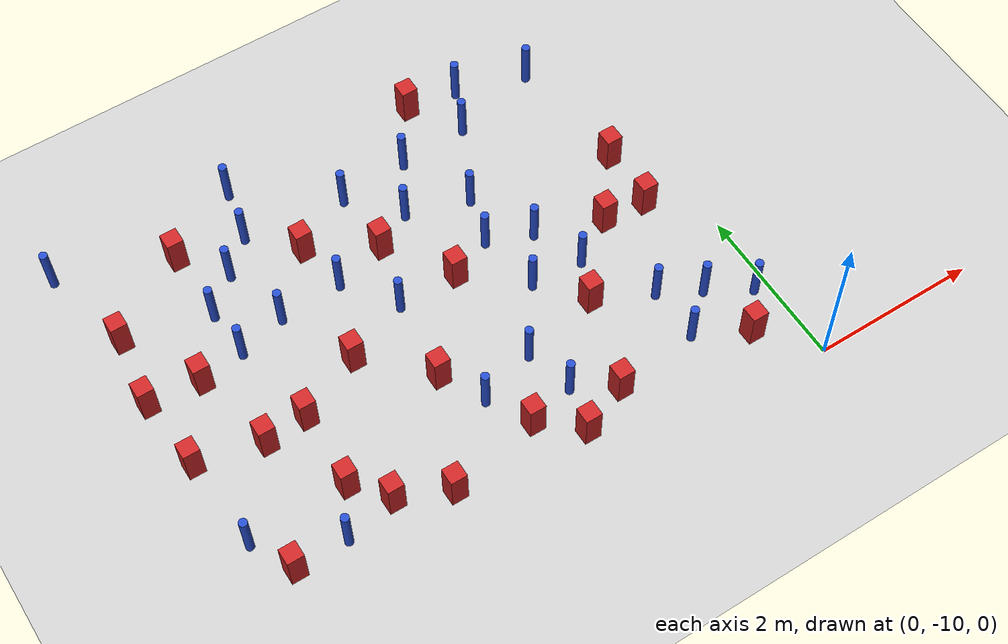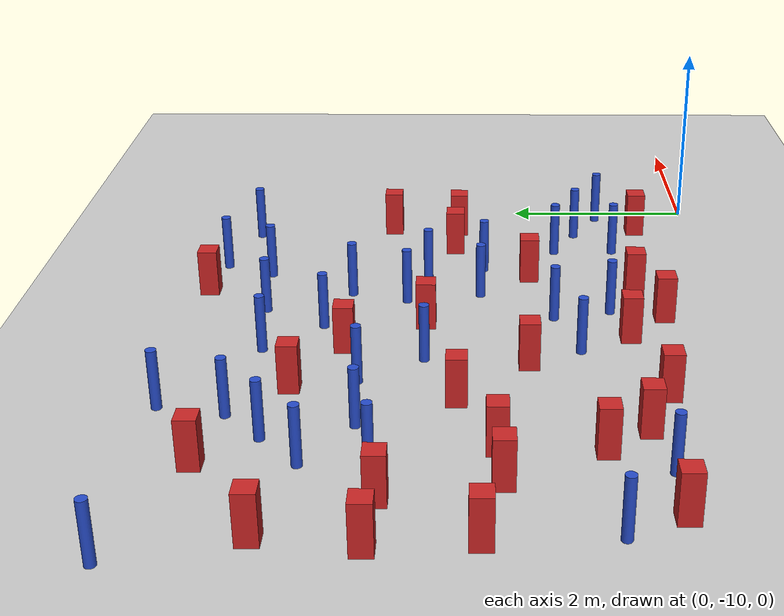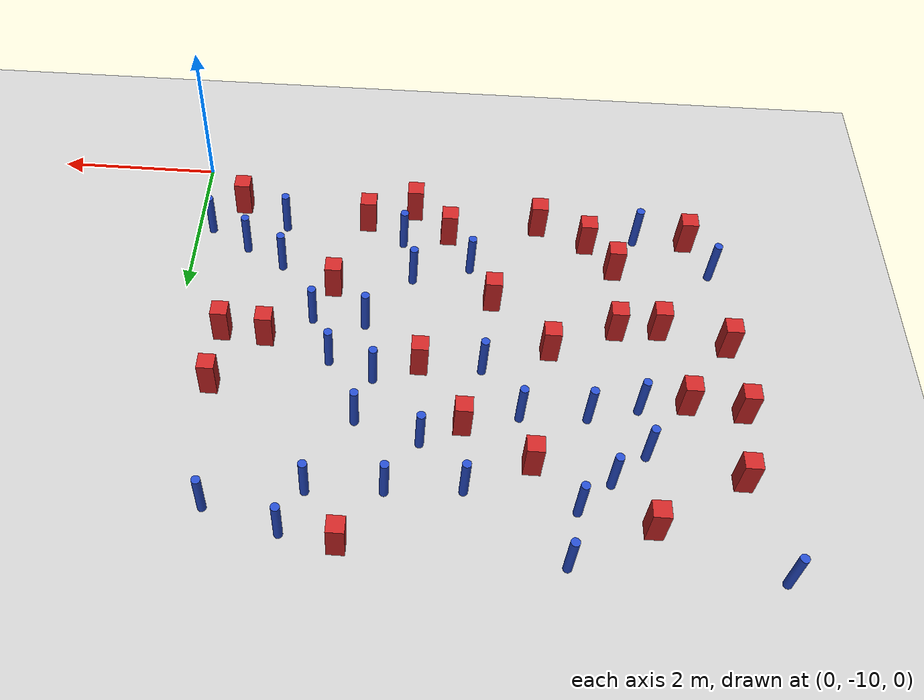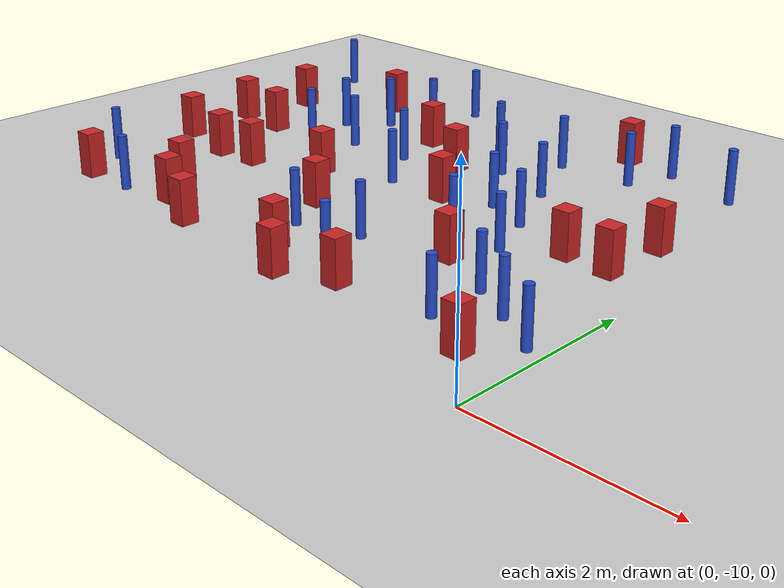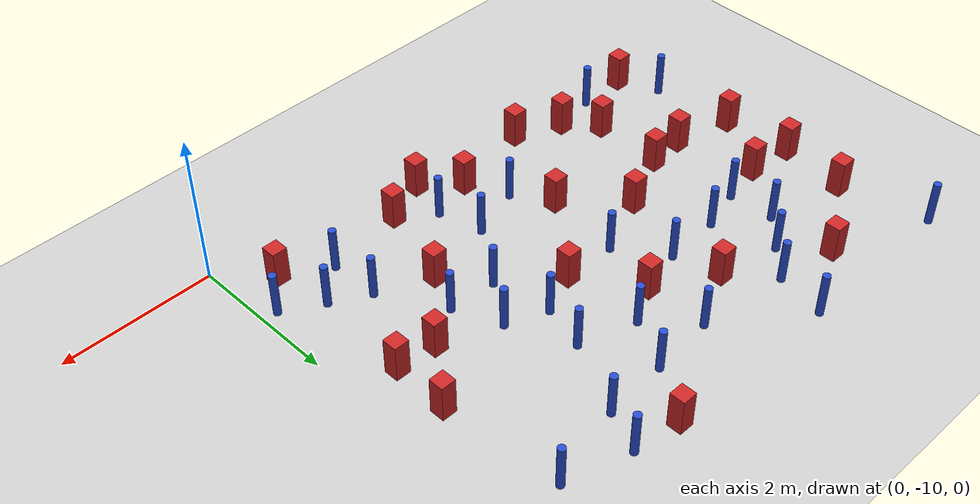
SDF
<sdf version="1.6">
 <world name="default">
  <model name="ground_plane">
   <static>1</static>
   <link name="link">
    <collision name="collision">
     <geometry><plane><normal>0 0 1</normal><size>100 100</size></plane></geometry>
     <surface><friction><ode><mu>100</mu><mu2>50</mu2></ode></friction></surface>
    </collision>
    <visual name="visual">
     <cast_shadows>0</cast_shadows>
     <geometry><plane><normal>0 0 1</normal><size>100 100</size></plane></geometry>
     <material>
      <ambient>1.0 1.0 1.0 1.0</ambient>
      <diffuse>0.8 0.8 0.8 1.0</diffuse>
      <specular>0.01 0.01 0.01 1.000000</specular>
     </material>
    </visual>
   </link>
  </model>
  <model name="square_post_obstacle1">
   <static>true</static>
   <pose>-6.49581654338 -5.72208467229 8.22691968438e-08 7.22125133819e-06 -7.54495500217e-07 2.29674213826e-05</pose>
   <link name="link">
    <pose>0 0 0.25 0 -0 0</pose>
    <inertial>
     <mass>100</mass>
     <inertia>
      <ixx>0.166667</ixx>
      <ixy>0</ixy>
      <ixz>0</ixz>
      <iyy>0.166667</iyy>
      <iyz>0</iyz>
      <izz>0.166667</izz>
     </inertia>
    </inertial>
    <collision name="collision"><geometry><box><size>.2 .2 .5</size></box></geometry></collision>
    <visual name="visual">
     <geometry><box><size>.2 .2 .5</size></box></geometry>
     <material>
      <script><name>Gazebo/Red</name><uri>file://media/materials/scripts/gazebo.material</uri></script>
     </material>
    </visual>
   </link>
  </model>
  <model name="pole_obstacle1">
   <static>true</static>
   <pose>-1.77444294185 -5.25899595476 2.88873142074e-08 -9.90536689852e-09 4.60219948989e-07 -1.2096599496e-07</pose>
   <link name="link">
    <pose>0 0 0.3 0 -0 0</pose>
    <inertial>
     <mass>1</mass>
     <inertia><ixx>0.145833</ixx><ixy>0</ixy><ixz>0</ixz><iyy>0.145833</iyy><iyz>0</iyz><izz>0.125</izz></inertia>
    </inertial>
    <collision name="collision">
     <geometry><cylinder><radius>0.05</radius><length>.6</length></cylinder></geometry>
    </collision>
    <visual name="visual">
     <geometry><cylinder><radius>0.05</radius><length>.6</length></cylinder></geometry>
     <material>
      <script><name>Gazebo/Blue</name><uri>file://media/materials/scripts/gazebo.material</uri></script>
     </material>
    </visual>
   </link>
  </model>
  <model name="square_post_obstacle4">
   <static>true</static>
   <pose>-0.535240153537 -6.54588953892 8.22691968438e-08 7.2212513382e-06 -7.54495500217e-07 2.29674213826e-05</pose>
   <link name="link">
    <pose>0 0 0.25 0 -0 0</pose>
    <inertial>
     <mass>100</mass>
     <inertia>
      <ixx>0.166667</ixx>
      <ixy>0</ixy>
      <ixz>0</ixz>
      <iyy>0.166667</iyy>
      <iyz>0</iyz>
      <izz>0.166667</izz>
     </inertia>
    </inertial>
    <collision name="collision"><geometry><box><size>.2 .2 .5</size></box></geometry></collision>
    <visual name="visual">
     <geometry><box><size>.2 .2 .5</size></box></geometry>
     <material>
      <script><name>Gazebo/Red</name><uri>file://media/materials/scripts/gazebo.material</uri></script>
     </material>
    </visual>
   </link>
  </model>
  <model name="square_post_obstacle5">
   <static>true</static>
   <pose>-5.23782894316 -7.6623888755 8.22691968438e-08 7.2212513382e-06 -7.54495500217e-07 2.29674213826e-05</pose>
   <link name="link">
    <pose>0 0 0.25 0 -0 0</pose>
    <inertial>
     <mass>100</mass>
     <inertia>
      <ixx>0.166667</ixx>
      <ixy>0</ixy>
      <ixz>0</ixz>
      <iyy>0.166667</iyy>
      <iyz>0</iyz>
      <izz>0.166667</izz>
     </inertia>
    </inertial>
    <collision name="collision"><geometry><box><size>.2 .2 .5</size></box></geometry></collision>
    <visual name="visual">
     <geometry><box><size>.2 .2 .5</size></box></geometry>
     <material>
      <script><name>Gazebo/Red</name><uri>file://media/materials/scripts/gazebo.material</uri></script>
     </material>
    </visual>
   </link>
  </model>
  <model name="square_post_obstacle7">
   <static>true</static>
   <pose>-5.48395240583 -5.07697319448 8.22691968438e-08 7.22125133819e-06 -7.54495500217e-07 2.29674213826e-05</pose>
   <link name="link">
    <pose>0 0 0.25 0 -0 0</pose>
    <inertial>
     <mass>100</mass>
     <inertia>
      <ixx>0.166667</ixx>
      <ixy>0</ixy>
      <ixz>0</ixz>
      <iyy>0.166667</iyy>
      <iyz>0</iyz>
      <izz>0.166667</izz>
     </inertia>
    </inertial>
    <collision name="collision"><geometry><box><size>.2 .2 .5</size></box></geometry></collision>
    <visual name="visual">
     <geometry><box><size>.2 .2 .5</size></box></geometry>
     <material>
      <script><name>Gazebo/Red</name><uri>file://media/materials/scripts/gazebo.material</uri></script>
     </material>
    </visual>
   </link>
  </model>
  <model name="square_post_obstacle15">
   <static>true</static>
   <pose>-5.27272113608 -8.60478890227 8.22691968438e-08 7.22125133819e-06 -7.54495500217e-07 2.29674213826e-05</pose>
   <link name="link">
    <pose>0 0 0.25 0 -0 0</pose>
    <inertial>
     <mass>100</mass>
     <inertia>
      <ixx>0.166667</ixx>
      <ixy>0</ixy>
      <ixz>0</ixz>
      <iyy>0.166667</iyy>
      <iyz>0</iyz>
      <izz>0.166667</izz>
     </inertia>
    </inertial>
    <collision name="collision"><geometry><box><size>.2 .2 .5</size></box></geometry></collision>
    <visual name="visual">
     <geometry><box><size>.2 .2 .5</size></box></geometry>
     <material>
      <script><name>Gazebo/Red</name><uri>file://media/materials/scripts/gazebo.material</uri></script>
     </material>
    </visual>
   </link>
  </model>
  <model name="pole_obstacle9">
   <static>true</static>
   <pose>-2.64808662355 -8.89009534541 2.88873142074e-08 -9.90536692318e-09 4.6021994893e-07 -1.20965994988e-07</pose>
   <link name="link">
    <pose>0 0 0.3 0 -0 0</pose>
    <inertial>
     <mass>1</mass>
     <inertia><ixx>0.145833</ixx><ixy>0</ixy><ixz>0</ixz><iyy>0.145833</iyy><iyz>0</iyz><izz>0.125</izz></inertia>
    </inertial>
    <collision name="collision">
     <geometry><cylinder><radius>0.05</radius><length>.6</length></cylinder></geometry>
    </collision>
    <visual name="visual">
     <geometry><cylinder><radius>0.05</radius><length>.6</length></cylinder></geometry>
     <material>
      <script><name>Gazebo/Blue</name><uri>file://media/materials/scripts/gazebo.material</uri></script>
     </material>
    </visual>
   </link>
  </model>
  <model name="square_post_obstacle27">
   <static>true</static>
   <pose>-2.92950062734 -6.98607490957 8.22691968438e-08 7.22125133819e-06 -7.54495500217e-07 2.29674213826e-05</pose>
   <link name="link">
    <pose>0 0 0.25 0 -0 0</pose>
    <inertial>
     <mass>100</mass>
     <inertia>
      <ixx>0.166667</ixx>
      <ixy>0</ixy>
      <ixz>0</ixz>
      <iyy>0.166667</iyy>
      <iyz>0</iyz>
      <izz>0.166667</izz>
     </inertia>
    </inertial>
    <collision name="collision"><geometry><box><size>.2 .2 .5</size></box></geometry></collision>
    <visual name="visual">
     <geometry><box><size>.2 .2 .5</size></box></geometry>
     <material>
      <script><name>Gazebo/Red</name><uri>file://media/materials/scripts/gazebo.material</uri></script>
     </material>
    </visual>
   </link>
  </model>
  <model name="pole_obstacle20">
   <static>true</static>
   <pose>-1.15723160822 -8.3994218162 2.88873142074e-08 -9.90536690474e-09 4.60219948974e-07 -1.2096599497e-07</pose>
   <link name="link">
    <pose>0 0 0.3 0 -0 0</pose>
    <inertial>
     <mass>1</mass>
     <inertia><ixx>0.145833</ixx><ixy>0</ixy><ixz>0</ixz><iyy>0.145833</iyy><iyz>0</iyz><izz>0.125</izz></inertia>
    </inertial>
    <collision name="collision">
     <geometry><cylinder><radius>0.05</radius><length>.6</length></cylinder></geometry>
    </collision>
    <visual name="visual">
     <geometry><cylinder><radius>0.05</radius><length>.6</length></cylinder></geometry>
     <material>
      <script><name>Gazebo/Blue</name><uri>file://media/materials/scripts/gazebo.material</uri></script>
     </material>
    </visual>
   </link>
  </model>
  <model name="pole_obstacle25">
   <static>true</static>
   <pose>-4.70092026937 -5.23075057599 2.88873142074e-08 -9.90536690842e-09 4.60219948965e-07 -1.20965994976e-07</pose>
   <link name="link">
    <pose>0 0 0.3 0 -0 0</pose>
    <inertial>
     <mass>1</mass>
     <inertia><ixx>0.145833</ixx><ixy>0</ixy><ixz>0</ixz><iyy>0.145833</iyy><iyz>0</iyz><izz>0.125</izz></inertia>
    </inertial>
    <collision name="collision">
     <geometry><cylinder><radius>0.05</radius><length>.6</length></cylinder></geometry>
    </collision>
    <visual name="visual">
     <geometry><cylinder><radius>0.05</radius><length>.6</length></cylinder></geometry>
     <material>
      <script><name>Gazebo/Blue</name><uri>file://media/materials/scripts/gazebo.material</uri></script>
     </material>
    </visual>
   </link>
  </model>
  <model name="pole_obstacle26">
   <static>true</static>
   <pose>-2.62782007153 -5.31586967501 2.88873142074e-08 -9.90536689859e-09 4.60219948989e-07 -1.20965994961e-07</pose>
   <link name="link">
    <pose>0 0 0.3 0 -0 0</pose>
    <inertial>
     <mass>1</mass>
     <inertia><ixx>0.145833</ixx><ixy>0</ixy><ixz>0</ixz><iyy>0.145833</iyy><iyz>0</iyz><izz>0.125</izz></inertia>
    </inertial>
    <collision name="collision">
     <geometry><cylinder><radius>0.05</radius><length>.6</length></cylinder></geometry>
    </collision>
    <visual name="visual">
     <geometry><cylinder><radius>0.05</radius><length>.6</length></cylinder></geometry>
     <material>
      <script><name>Gazebo/Blue</name><uri>file://media/materials/scripts/gazebo.material</uri></script>
     </material>
    </visual>
   </link>
  </model>
  <model name="pole_obstacle37">
   <static>true</static>
   <pose>-5.4778821513 -5.96932572095 2.88873142074e-08 -9.90536690842e-09 4.60219948965e-07 -1.20965994976e-07</pose>
   <link name="link">
    <pose>0 0 0.3 0 -0 0</pose>
    <inertial>
     <mass>1</mass>
     <inertia><ixx>0.145833</ixx><ixy>0</ixy><ixz>0</ixz><iyy>0.145833</iyy><iyz>0</iyz><izz>0.125</izz></inertia>
    </inertial>
    <collision name="collision">
     <geometry><cylinder><radius>0.05</radius><length>.6</length></cylinder></geometry>
    </collision>
    <visual name="visual">
     <geometry><cylinder><radius>0.05</radius><length>.6</length></cylinder></geometry>
     <material>
      <script><name>Gazebo/Blue</name><uri>file://media/materials/scripts/gazebo.material</uri></script>
     </material>
    </visual>
   </link>
  </model>
  <model name="square_post_obstacle42">
   <static>true</static>
   <pose>-4.4484687939 -7.30685529738 8.22691968438e-08 7.2212513382e-06 -7.54495500217e-07 2.29674213826e-05</pose>
   <link name="link">
    <pose>0 0 0.25 0 -0 0</pose>
    <inertial>
     <mass>100</mass>
     <inertia>
      <ixx>0.166667</ixx>
      <ixy>0</ixy>
      <ixz>0</ixz>
      <iyy>0.166667</iyy>
      <iyz>0</iyz>
      <izz>0.166667</izz>
     </inertia>
    </inertial>
    <collision name="collision"><geometry><box><size>.2 .2 .5</size></box></geometry></collision>
    <visual name="visual">
     <geometry><box><size>.2 .2 .5</size></box></geometry>
     <material>
      <script><name>Gazebo/Red</name><uri>file://media/materials/scripts/gazebo.material</uri></script>
     </material>
    </visual>
   </link>
  </model>
  <model name="pole_obstacle47">
   <static>true</static>
   <pose>-2.25893494563 -7.54692116782 2.88873142074e-08 -9.90536689859e-09 4.60219948989e-07 -1.20965994961e-07</pose>
   <link name="link">
    <pose>0 0 0.3 0 -0 0</pose>
    <inertial>
     <mass>1</mass>
     <inertia><ixx>0.145833</ixx><ixy>0</ixy><ixz>0</ixz><iyy>0.145833</iyy><iyz>0</iyz><izz>0.125</izz></inertia>
    </inertial>
    <collision name="collision">
     <geometry><cylinder><radius>0.05</radius><length>.6</length></cylinder></geometry>
    </collision>
    <visual name="visual">
     <geometry><cylinder><radius>0.05</radius><length>.6</length></cylinder></geometry>
     <material>
      <script><name>Gazebo/Blue</name><uri>file://media/materials/scripts/gazebo.material</uri></script>
     </material>
    </visual>
   </link>
  </model>
  <model name="square_post_obstacle54">
   <static>true</static>
   <pose>-3.21653124557 -9.03591766853 8.22691968438e-08 7.22125133819e-06 -7.54495500217e-07 2.29674213826e-05</pose>
   <link name="link">
    <pose>0 0 0.25 0 -0 0</pose>
    <inertial>
     <mass>100</mass>
     <inertia>
      <ixx>0.166667</ixx>
      <ixy>0</ixy>
      <ixz>0</ixz>
      <iyy>0.166667</iyy>
      <iyz>0</iyz>
      <izz>0.166667</izz>
     </inertia>
    </inertial>
    <collision name="collision"><geometry><box><size>.2 .2 .5</size></box></geometry></collision>
    <visual name="visual">
     <geometry><box><size>.2 .2 .5</size></box></geometry>
     <material>
      <script><name>Gazebo/Red</name><uri>file://media/materials/scripts/gazebo.material</uri></script>
     </material>
    </visual>
   </link>
  </model>
  <model name="square_post_obstacle69">
   <static>true</static>
   <pose>-6.61277963829 -6.60473546543 8.22691968438e-08 7.2212513382e-06 -7.54495500217e-07 2.29674213826e-05</pose>
   <link name="link">
    <pose>0 0 0.25 0 -0 0</pose>
    <inertial>
     <mass>100</mass>
     <inertia>
      <ixx>0.166667</ixx>
      <ixy>0</ixy>
      <ixz>0</ixz>
      <iyy>0.166667</iyy>
      <iyz>0</iyz>
      <izz>0.166667</izz>
     </inertia>
    </inertial>
    <collision name="collision"><geometry><box><size>.2 .2 .5</size></box></geometry></collision>
    <visual name="visual">
     <geometry><box><size>.2 .2 .5</size></box></geometry>
     <material>
      <script><name>Gazebo/Red</name><uri>file://media/materials/scripts/gazebo.material</uri></script>
     </material>
    </visual>
   </link>
  </model>
  <model name="square_post_obstacle72">
   <static>true</static>
   <pose>-4.94612372388 -9.01210995089 8.22691968438e-08 7.2212513382e-06 -7.54495500217e-07 2.29674213826e-05</pose>
   <link name="link">
    <pose>0 0 0.25 0 -0 0</pose>
    <inertial>
     <mass>100</mass>
     <inertia>
      <ixx>0.166667</ixx>
      <ixy>0</ixy>
      <ixz>0</ixz>
      <iyy>0.166667</iyy>
      <iyz>0</iyz>
      <izz>0.166667</izz>
     </inertia>
    </inertial>
    <collision name="collision"><geometry><box><size>.2 .2 .5</size></box></geometry></collision>
    <visual name="visual">
     <geometry><box><size>.2 .2 .5</size></box></geometry>
     <material>
      <script><name>Gazebo/Red</name><uri>file://media/materials/scripts/gazebo.material</uri></script>
     </material>
    </visual>
   </link>
  </model>
  <model name="pole_obstacle77">
   <static>true</static>
   <pose>-3.48215298455 -5.38869182189 2.88873142074e-08 -9.90536692062e-09 4.60219948937e-07 -1.20965994985e-07</pose>
   <link name="link">
    <pose>0 0 0.3 0 -0 0</pose>
    <inertial>
     <mass>1</mass>
     <inertia><ixx>0.145833</ixx><ixy>0</ixy><ixz>0</ixz><iyy>0.145833</iyy><iyz>0</iyz><izz>0.125</izz></inertia>
    </inertial>
    <collision name="collision">
     <geometry><cylinder><radius>0.05</radius><length>.6</length></cylinder></geometry>
    </collision>
    <visual name="visual">
     <geometry><cylinder><radius>0.05</radius><length>.6</length></cylinder></geometry>
     <material>
      <script><name>Gazebo/Blue</name><uri>file://media/materials/scripts/gazebo.material</uri></script>
     </material>
    </visual>
   </link>
  </model>
  <model name="pole_obstacle78">
   <static>true</static>
   <pose>-1.62302462864 -7.59000392586 2.88873142074e-08 -9.90536689852e-09 4.60219948989e-07 -1.2096599496e-07</pose>
   <link name="link">
    <pose>0 0 0.3 0 -0 0</pose>
    <inertial>
     <mass>1</mass>
     <inertia><ixx>0.145833</ixx><ixy>0</ixy><ixz>0</ixz><iyy>0.145833</iyy><iyz>0</iyz><izz>0.125</izz></inertia>
    </inertial>
    <collision name="collision">
     <geometry><cylinder><radius>0.05</radius><length>.6</length></cylinder></geometry>
    </collision>
    <visual name="visual">
     <geometry><cylinder><radius>0.05</radius><length>.6</length></cylinder></geometry>
     <material>
      <script><name>Gazebo/Blue</name><uri>file://media/materials/scripts/gazebo.material</uri></script>
     </material>
    </visual>
   </link>
  </model>
  <model name="pole_obstacle80">
   <static>true</static>
   <pose>-3.49709025346 -8.5238423531 2.88873142074e-08 -9.90536692318e-09 4.6021994893e-07 -1.20965994988e-07</pose>
   <link name="link">
    <pose>0 0 0.3 0 -0 0</pose>
    <inertial>
     <mass>1</mass>
     <inertia><ixx>0.145833</ixx><ixy>0</ixy><ixz>0</ixz><iyy>0.145833</iyy><iyz>0</iyz><izz>0.125</izz></inertia>
    </inertial>
    <collision name="collision">
     <geometry><cylinder><radius>0.05</radius><length>.6</length></cylinder></geometry>
    </collision>
    <visual name="visual">
     <geometry><cylinder><radius>0.05</radius><length>.6</length></cylinder></geometry>
     <material>
      <script><name>Gazebo/Blue</name><uri>file://media/materials/scripts/gazebo.material</uri></script>
     </material>
    </visual>
   </link>
  </model>
  <model name="square_post_obstacle83">
   <static>true</static>
   <pose>-5.98142755582 -6.66524593034 8.22691968438e-08 7.22125133819e-06 -7.54495500217e-07 2.29674213826e-05</pose>
   <link name="link">
    <pose>0 0 0.25 0 -0 0</pose>
    <inertial>
     <mass>100</mass>
     <inertia>
      <ixx>0.166667</ixx>
      <ixy>0</ixy>
      <ixz>0</ixz>
      <iyy>0.166667</iyy>
      <iyz>0</iyz>
      <izz>0.166667</izz>
     </inertia>
    </inertial>
    <collision name="collision"><geometry><box><size>.2 .2 .5</size></box></geometry></collision>
    <visual name="visual">
     <geometry><box><size>.2 .2 .5</size></box></geometry>
     <material>
      <script><name>Gazebo/Red</name><uri>file://media/materials/scripts/gazebo.material</uri></script>
     </material>
    </visual>
   </link>
  </model>
  <model name="pole_obstacle102">
   <static>true</static>
   <pose>-3.66283865243 -6.9889638224 2.88873142074e-08 -9.90536689859e-09 4.60219948989e-07 -1.20965994961e-07</pose>
   <link name="link">
    <pose>0 0 0.3 0 -0 0</pose>
    <inertial>
     <mass>1</mass>
     <inertia><ixx>0.145833</ixx><ixy>0</ixy><ixz>0</ixz><iyy>0.145833</iyy><iyz>0</iyz><izz>0.125</izz></inertia>
    </inertial>
    <collision name="collision">
     <geometry><cylinder><radius>0.05</radius><length>.6</length></cylinder></geometry>
    </collision>
    <visual name="visual">
     <geometry><cylinder><radius>0.05</radius><length>.6</length></cylinder></geometry>
     <material>
      <script><name>Gazebo/Blue</name><uri>file://media/materials/scripts/gazebo.material</uri></script>
     </material>
    </visual>
   </link>
  </model>
  <model name="pole_obstacle106">
   <static>true</static>
   <pose>-2.79402318946 -8.29887619754 2.88873142074e-08 -9.90536692318e-09 4.6021994893e-07 -1.20965994988e-07</pose>
   <link name="link">
    <pose>0 0 0.3 0 -0 0</pose>
    <inertial>
     <mass>1</mass>
     <inertia><ixx>0.145833</ixx><ixy>0</ixy><ixz>0</ixz><iyy>0.145833</iyy><iyz>0</iyz><izz>0.125</izz></inertia>
    </inertial>
    <collision name="collision">
     <geometry><cylinder><radius>0.05</radius><length>.6</length></cylinder></geometry>
    </collision>
    <visual name="visual">
     <geometry><cylinder><radius>0.05</radius><length>.6</length></cylinder></geometry>
     <material>
      <script><name>Gazebo/Blue</name><uri>file://media/materials/scripts/gazebo.material</uri></script>
     </material>
    </visual>
   </link>
  </model>
  <model name="pole_obstacle114">
   <static>true</static>
   <pose>-2.23757025303 -6.18455468246 2.88873142074e-08 -9.90536689859e-09 4.60219948989e-07 -1.20965994961e-07</pose>
   <link name="link">
    <pose>0 0 0.3 0 -0 0</pose>
    <inertial>
     <mass>1</mass>
     <inertia><ixx>0.145833</ixx><ixy>0</ixy><ixz>0</ixz><iyy>0.145833</iyy><iyz>0</iyz><izz>0.125</izz></inertia>
    </inertial>
    <collision name="collision">
     <geometry><cylinder><radius>0.05</radius><length>.6</length></cylinder></geometry>
    </collision>
    <visual name="visual">
     <geometry><cylinder><radius>0.05</radius><length>.6</length></cylinder></geometry>
     <material>
      <script><name>Gazebo/Blue</name><uri>file://media/materials/scripts/gazebo.material</uri></script>
     </material>
    </visual>
   </link>
  </model>
  <model name="square_post_obstacle106">
   <static>true</static>
   <pose>-3.77031063508 -7.9996013728 8.22691968438e-08 7.2212513382e-06 -7.54495500217e-07 2.29674213826e-05</pose>
   <link name="link">
    <pose>0 0 0.25 0 -0 0</pose>
    <inertial>
     <mass>100</mass>
     <inertia>
      <ixx>0.166667</ixx>
      <ixy>0</ixy>
      <ixz>0</ixz>
      <iyy>0.166667</iyy>
      <iyz>0</iyz>
      <izz>0.166667</izz>
     </inertia>
    </inertial>
    <collision name="collision"><geometry><box><size>.2 .2 .5</size></box></geometry></collision>
    <visual name="visual">
     <geometry><box><size>.2 .2 .5</size></box></geometry>
     <material>
      <script><name>Gazebo/Red</name><uri>file://media/materials/scripts/gazebo.material</uri></script>
     </material>
    </visual>
   </link>
  </model>
  <model name="square_post_obstacle107">
   <static>true</static>
   <pose>-2.17443051852 -4.64879258032 8.22691968438e-08 7.2212513382e-06 -7.54495500217e-07 2.29674213826e-05</pose>
   <link name="link">
    <pose>0 0 0.25 0 -0 0</pose>
    <inertial>
     <mass>100</mass>
     <inertia>
      <ixx>0.166667</ixx>
      <ixy>0</ixy>
      <ixz>0</ixz>
      <iyy>0.166667</iyy>
      <iyz>0</iyz>
      <izz>0.166667</izz>
     </inertia>
    </inertial>
    <collision name="collision"><geometry><box><size>.2 .2 .5</size></box></geometry></collision>
    <visual name="visual">
     <geometry><box><size>.2 .2 .5</size></box></geometry>
     <material>
      <script><name>Gazebo/Red</name><uri>file://media/materials/scripts/gazebo.material</uri></script>
     </material>
    </visual>
   </link>
  </model>
  <model name="square_post_obstacle111">
   <static>true</static>
   <pose>-0.564410145143 -7.3117755938 8.22691968438e-08 7.2212513382e-06 -7.54495500217e-07 2.29674213826e-05</pose>
   <link name="link">
    <pose>0 0 0.25 0 -0 0</pose>
    <inertial>
     <mass>100</mass>
     <inertia>
      <ixx>0.166667</ixx>
      <ixy>0</ixy>
      <ixz>0</ixz>
      <iyy>0.166667</iyy>
      <iyz>0</iyz>
      <izz>0.166667</izz>
     </inertia>
    </inertial>
    <collision name="collision"><geometry><box><size>.2 .2 .5</size></box></geometry></collision>
    <visual name="visual">
     <geometry><box><size>.2 .2 .5</size></box></geometry>
     <material>
      <script><name>Gazebo/Red</name><uri>file://media/materials/scripts/gazebo.material</uri></script>
     </material>
    </visual>
   </link>
  </model>
  <model name="pole_obstacle134">
   <static>true</static>
   <pose>-2.40317543687 -6.77204001491 2.88873142074e-08 -9.90536689859e-09 4.60219948989e-07 -1.20965994961e-07</pose>
   <link name="link">
    <pose>0 0 0.3 0 -0 0</pose>
    <inertial>
     <mass>1</mass>
     <inertia><ixx>0.145833</ixx><ixy>0</ixy><ixz>0</ixz><iyy>0.145833</iyy><iyz>0</iyz><izz>0.125</izz></inertia>
    </inertial>
    <collision name="collision">
     <geometry><cylinder><radius>0.05</radius><length>.6</length></cylinder></geometry>
    </collision>
    <visual name="visual">
     <geometry><cylinder><radius>0.05</radius><length>.6</length></cylinder></geometry>
     <material>
      <script><name>Gazebo/Blue</name><uri>file://media/materials/scripts/gazebo.material</uri></script>
     </material>
    </visual>
   </link>
  </model>
  <model name="pole_obstacle136">
   <static>true</static>
   <pose>-0.682146431799 -8.65762190198 2.88873142074e-08 -9.90536690779e-09 4.60219948967e-07 -1.20965994975e-07</pose>
   <link name="link">
    <pose>0 0 0.3 0 -0 0</pose>
    <inertial>
     <mass>1</mass>
     <inertia><ixx>0.145833</ixx><ixy>0</ixy><ixz>0</ixz><iyy>0.145833</iyy><iyz>0</iyz><izz>0.125</izz></inertia>
    </inertial>
    <collision name="collision">
     <geometry><cylinder><radius>0.05</radius><length>.6</length></cylinder></geometry>
    </collision>
    <visual name="visual">
     <geometry><cylinder><radius>0.05</radius><length>.6</length></cylinder></geometry>
     <material>
      <script><name>Gazebo/Blue</name><uri>file://media/materials/scripts/gazebo.material</uri></script>
     </material>
    </visual>
   </link>
  </model>
  <model name="square_post_obstacle119">
   <static>true</static>
   <pose>-0.54333148861 -9.38399003667 8.22691968438e-08 7.22125133819e-06 -7.54495500217e-07 2.29674213826e-05</pose>
   <link name="link">
    <pose>0 0 0.25 0 -0 0</pose>
    <inertial>
     <mass>100</mass>
     <inertia>
      <ixx>0.166667</ixx>
      <ixy>0</ixy>
      <ixz>0</ixz>
      <iyy>0.166667</iyy>
      <iyz>0</iyz>
      <izz>0.166667</izz>
     </inertia>
    </inertial>
    <collision name="collision"><geometry><box><size>.2 .2 .5</size></box></geometry></collision>
    <visual name="visual">
     <geometry><box><size>.2 .2 .5</size></box></geometry>
     <material>
      <script><name>Gazebo/Red</name><uri>file://media/materials/scripts/gazebo.material</uri></script>
     </material>
    </visual>
   </link>
  </model>
  <model name="square_post_obstacle122">
   <static>true</static>
   <pose>-6.19625699769 -9.14391084021 8.22691968438e-08 7.22125133819e-06 -7.54495500217e-07 2.29674213826e-05</pose>
   <link name="link">
    <pose>0 0 0.25 0 -0 0</pose>
    <inertial>
     <mass>100</mass>
     <inertia>
      <ixx>0.166667</ixx>
      <ixy>0</ixy>
      <ixz>0</ixz>
      <iyy>0.166667</iyy>
      <iyz>0</iyz>
      <izz>0.166667</izz>
     </inertia>
    </inertial>
    <collision name="collision"><geometry><box><size>.2 .2 .5</size></box></geometry></collision>
    <visual name="visual">
     <geometry><box><size>.2 .2 .5</size></box></geometry>
     <material>
      <script><name>Gazebo/Red</name><uri>file://media/materials/scripts/gazebo.material</uri></script>
     </material>
    </visual>
   </link>
  </model>
  <model name="square_post_obstacle124">
   <static>true</static>
   <pose>-4.2175598201 -5.75183578168 8.22691968438e-08 7.22125133819e-06 -7.54495500217e-07 2.29674213826e-05</pose>
   <link name="link">
    <pose>0 0 0.25 0 -0 0</pose>
    <inertial>
     <mass>100</mass>
     <inertia>
      <ixx>0.166667</ixx>
      <ixy>0</ixy>
      <ixz>0</ixz>
      <iyy>0.166667</iyy>
      <iyz>0</iyz>
      <izz>0.166667</izz>
     </inertia>
    </inertial>
    <collision name="collision"><geometry><box><size>.2 .2 .5</size></box></geometry></collision>
    <visual name="visual">
     <geometry><box><size>.2 .2 .5</size></box></geometry>
     <material>
      <script><name>Gazebo/Red</name><uri>file://media/materials/scripts/gazebo.material</uri></script>
     </material>
    </visual>
   </link>
  </model>
  <model name="square_post_obstacle129">
   <static>true</static>
   <pose>-5.74767473606 -7.70438703255 8.22691968438e-08 7.2212513382e-06 -7.54495500217e-07 2.29674213826e-05</pose>
   <link name="link">
    <pose>0 0 0.25 0 -0 0</pose>
    <inertial>
     <mass>100</mass>
     <inertia>
      <ixx>0.166667</ixx>
      <ixy>0</ixy>
      <ixz>0</ixz>
      <iyy>0.166667</iyy>
      <iyz>0</iyz>
      <izz>0.166667</izz>
     </inertia>
    </inertial>
    <collision name="collision"><geometry><box><size>.2 .2 .5</size></box></geometry></collision>
    <visual name="visual">
     <geometry><box><size>.2 .2 .5</size></box></geometry>
     <material>
      <script><name>Gazebo/Red</name><uri>file://media/materials/scripts/gazebo.material</uri></script>
     </material>
    </visual>
   </link>
  </model>
  <model name="pole_obstacle143">
   <static>true</static>
   <pose>-4.09270612147 -6.37151546168 2.88873142074e-08 -9.90536690842e-09 4.60219948965e-07 -1.20965994976e-07</pose>
   <link name="link">
    <pose>0 0 0.3 0 -0 0</pose>
    <inertial>
     <mass>1</mass>
     <inertia><ixx>0.145833</ixx><ixy>0</ixy><ixz>0</ixz><iyy>0.145833</iyy><iyz>0</iyz><izz>0.125</izz></inertia>
    </inertial>
    <collision name="collision">
     <geometry><cylinder><radius>0.05</radius><length>.6</length></cylinder></geometry>
    </collision>
    <visual name="visual">
     <geometry><cylinder><radius>0.05</radius><length>.6</length></cylinder></geometry>
     <material>
      <script><name>Gazebo/Blue</name><uri>file://media/materials/scripts/gazebo.material</uri></script>
     </material>
    </visual>
   </link>
  </model>
  <model name="pole_obstacle145">
   <static>true</static>
   <pose>-6.46090372079 -8.63622571705 2.88873142074e-08 -9.9053668967e-09 4.60219948993e-07 -1.20965994957e-07</pose>
   <link name="link">
    <pose>0 0 0.3 0 -0 0</pose>
    <inertial>
     <mass>1</mass>
     <inertia><ixx>0.145833</ixx><ixy>0</ixy><ixz>0</ixz><iyy>0.145833</iyy><iyz>0</iyz><izz>0.125</izz></inertia>
    </inertial>
    <collision name="collision">
     <geometry><cylinder><radius>0.05</radius><length>.6</length></cylinder></geometry>
    </collision>
    <visual name="visual">
     <geometry><cylinder><radius>0.05</radius><length>.6</length></cylinder></geometry>
     <material>
      <script><name>Gazebo/Blue</name><uri>file://media/materials/scripts/gazebo.material</uri></script>
     </material>
    </visual>
   </link>
  </model>
  <model name="square_post_obstacle137">
   <static>true</static>
   <pose>-2.18064500706 -9.19139764427 8.22691968438e-08 7.22125133819e-06 -7.54495500217e-07 2.29674213826e-05</pose>
   <link name="link">
    <pose>0 0 0.25 0 -0 0</pose>
    <inertial>
     <mass>100</mass>
     <inertia>
      <ixx>0.166667</ixx>
      <ixy>0</ixy>
      <ixz>0</ixz>
      <iyy>0.166667</iyy>
      <iyz>0</iyz>
      <izz>0.166667</izz>
     </inertia>
    </inertial>
    <collision name="collision"><geometry><box><size>.2 .2 .5</size></box></geometry></collision>
    <visual name="visual">
     <geometry><box><size>.2 .2 .5</size></box></geometry>
     <material>
      <script><name>Gazebo/Red</name><uri>file://media/materials/scripts/gazebo.material</uri></script>
     </material>
    </visual>
   </link>
  </model>
  <model name="pole_obstacle149">
   <static>true</static>
   <pose>-1.13773083183 -9.05965031348 2.88873142074e-08 -9.90536690474e-09 4.60219948974e-07 -1.2096599497e-07</pose>
   <link name="link">
    <pose>0 0 0.3 0 -0 0</pose>
    <inertial>
     <mass>1</mass>
     <inertia><ixx>0.145833</ixx><ixy>0</ixy><ixz>0</ixz><iyy>0.145833</iyy><iyz>0</iyz><izz>0.125</izz></inertia>
    </inertial>
    <collision name="collision">
     <geometry><cylinder><radius>0.05</radius><length>.6</length></cylinder></geometry>
    </collision>
    <visual name="visual">
     <geometry><cylinder><radius>0.05</radius><length>.6</length></cylinder></geometry>
     <material>
      <script><name>Gazebo/Blue</name><uri>file://media/materials/scripts/gazebo.material</uri></script>
     </material>
    </visual>
   </link>
  </model>
  <model name="pole_obstacle160">
   <static>true</static>
   <pose>-4.85971153148 -6.41260899133 2.88873142074e-08 -9.90536690842e-09 4.60219948965e-07 -1.20965994976e-07</pose>
   <link name="link">
    <pose>0 0 0.3 0 -0 0</pose>
    <inertial>
     <mass>1</mass>
     <inertia><ixx>0.145833</ixx><ixy>0</ixy><ixz>0</ixz><iyy>0.145833</iyy><iyz>0</iyz><izz>0.125</izz></inertia>
    </inertial>
    <collision name="collision">
     <geometry><cylinder><radius>0.05</radius><length>.6</length></cylinder></geometry>
    </collision>
    <visual name="visual">
     <geometry><cylinder><radius>0.05</radius><length>.6</length></cylinder></geometry>
     <material>
      <script><name>Gazebo/Blue</name><uri>file://media/materials/scripts/gazebo.material</uri></script>
     </material>
    </visual>
   </link>
  </model>
  <model name="square_post_obstacle154">
   <static>true</static>
   <pose>-1.09141894807 -7.26910086429 8.22691968438e-08 7.2212513382e-06 -7.54495500217e-07 2.29674213826e-05</pose>
   <link name="link">
    <pose>0 0 0.25 0 -0 0</pose>
    <inertial>
     <mass>100</mass>
     <inertia>
      <ixx>0.166667</ixx>
      <ixy>0</ixy>
      <ixz>0</ixz>
      <iyy>0.166667</iyy>
      <iyz>0</iyz>
      <izz>0.166667</izz>
     </inertia>
    </inertial>
    <collision name="collision"><geometry><box><size>.2 .2 .5</size></box></geometry></collision>
    <visual name="visual">
     <geometry><box><size>.2 .2 .5</size></box></geometry>
     <material>
      <script><name>Gazebo/Red</name><uri>file://media/materials/scripts/gazebo.material</uri></script>
     </material>
    </visual>
   </link>
  </model>
  <model name="square_post_obstacle157">
   <static>true</static>
   <pose>-2.76888586402 -9.43400743139 8.22691968438e-08 7.22125133819e-06 -7.54495500217e-07 2.29674213826e-05</pose>
   <link name="link">
    <pose>0 0 0.25 0 -0 0</pose>
    <inertial>
     <mass>100</mass>
     <inertia>
      <ixx>0.166667</ixx>
      <ixy>0</ixy>
      <ixz>0</ixz>
      <iyy>0.166667</iyy>
      <iyz>0</iyz>
      <izz>0.166667</izz>
     </inertia>
    </inertial>
    <collision name="collision"><geometry><box><size>.2 .2 .5</size></box></geometry></collision>
    <visual name="visual">
     <geometry><box><size>.2 .2 .5</size></box></geometry>
     <material>
      <script><name>Gazebo/Red</name><uri>file://media/materials/scripts/gazebo.material</uri></script>
     </material>
    </visual>
   </link>
  </model>
  <model name="pole_obstacle175">
   <static>true</static>
   <pose>-5.44127780708 -6.56980166614 2.88873142074e-08 -9.90536690842e-09 4.60219948965e-07 -1.20965994976e-07</pose>
   <link name="link">
    <pose>0 0 0.3 0 -0 0</pose>
    <inertial>
     <mass>1</mass>
     <inertia><ixx>0.145833</ixx><ixy>0</ixy><ixz>0</ixz><iyy>0.145833</iyy><iyz>0</iyz><izz>0.125</izz></inertia>
    </inertial>
    <collision name="collision">
     <geometry><cylinder><radius>0.05</radius><length>.6</length></cylinder></geometry>
    </collision>
    <visual name="visual">
     <geometry><cylinder><radius>0.05</radius><length>.6</length></cylinder></geometry>
     <material>
      <script><name>Gazebo/Blue</name><uri>file://media/materials/scripts/gazebo.material</uri></script>
     </material>
    </visual>
   </link>
  </model>
  <model name="pole_obstacle176">
   <static>true</static>
   <pose>-1.87443756932 -6.9823668942 2.88873142074e-08 -9.90536689852e-09 4.60219948989e-07 -1.2096599496e-07</pose>
   <link name="link">
    <pose>0 0 0.3 0 -0 0</pose>
    <inertial>
     <mass>1</mass>
     <inertia><ixx>0.145833</ixx><ixy>0</ixy><ixz>0</ixz><iyy>0.145833</iyy><iyz>0</iyz><izz>0.125</izz></inertia>
    </inertial>
    <collision name="collision">
     <geometry><cylinder><radius>0.05</radius><length>.6</length></cylinder></geometry>
    </collision>
    <visual name="visual">
     <geometry><cylinder><radius>0.05</radius><length>.6</length></cylinder></geometry>
     <material>
      <script><name>Gazebo/Blue</name><uri>file://media/materials/scripts/gazebo.material</uri></script>
     </material>
    </visual>
   </link>
  </model>
  <model name="pole_obstacle180">
   <static>true</static>
   <pose>-6.79959230796 -4.58397094192 2.88873142074e-08 -9.90536690842e-09 4.60219948965e-07 -1.20965994976e-07</pose>
   <link name="link">
    <pose>0 0 0.3 0 -0 0</pose>
    <inertial>
     <mass>1</mass>
     <inertia><ixx>0.145833</ixx><ixy>0</ixy><ixz>0</ixz><iyy>0.145833</iyy><iyz>0</iyz><izz>0.125</izz></inertia>
    </inertial>
    <collision name="collision">
     <geometry><cylinder><radius>0.05</radius><length>.6</length></cylinder></geometry>
    </collision>
    <visual name="visual">
     <geometry><cylinder><radius>0.05</radius><length>.6</length></cylinder></geometry>
     <material>
      <script><name>Gazebo/Blue</name><uri>file://media/materials/scripts/gazebo.material</uri></script>
     </material>
    </visual>
   </link>
  </model>
  <model name="square_post_obstacle174">
   <static>true</static>
   <pose>-6.53330955989 -7.51356223323 8.22691968438e-08 7.22125133819e-06 -7.54495500217e-07 2.29674213826e-05</pose>
   <link name="link">
    <pose>0 0 0.25 0 -0 0</pose>
    <inertial>
     <mass>100</mass>
     <inertia>
      <ixx>0.166667</ixx>
      <ixy>0</ixy>
      <ixz>0</ixz>
      <iyy>0.166667</iyy>
      <iyz>0</iyz>
      <izz>0.166667</izz>
     </inertia>
    </inertial>
    <collision name="collision"><geometry><box><size>.2 .2 .5</size></box></geometry></collision>
    <visual name="visual">
     <geometry><box><size>.2 .2 .5</size></box></geometry>
     <material>
      <script><name>Gazebo/Red</name><uri>file://media/materials/scripts/gazebo.material</uri></script>
     </material>
    </visual>
   </link>
  </model>
  <model name="square_post_obstacle181">
   <static>true</static>
   <pose>-1.83283840256 -8.08093875509 8.22691968438e-08 7.22125133819e-06 -7.54495500217e-07 2.29674213826e-05</pose>
   <link name="link">
    <pose>0 0 0.25 0 -0 0</pose>
    <inertial>
     <mass>100</mass>
     <inertia>
      <ixx>0.166667</ixx>
      <ixy>0</ixy>
      <ixz>0</ixz>
      <iyy>0.166667</iyy>
      <iyz>0</iyz>
      <izz>0.166667</izz>
     </inertia>
    </inertial>
    <collision name="collision"><geometry><box><size>.2 .2 .5</size></box></geometry></collision>
    <visual name="visual">
     <geometry><box><size>.2 .2 .5</size></box></geometry>
     <material>
      <script><name>Gazebo/Red</name><uri>file://media/materials/scripts/gazebo.material</uri></script>
     </material>
    </visual>
   </link>
  </model>
  <model name="square_post_obstacle182">
   <static>true</static>
   <pose>-4.34393222119 -9.27281849512 8.22691968438e-08 7.22125133819e-06 -7.54495500217e-07 2.29674213826e-05</pose>
   <link name="link">
    <pose>0 0 0.25 0 -0 0</pose>
    <inertial>
     <mass>100</mass>
     <inertia>
      <ixx>0.166667</ixx>
      <ixy>0</ixy>
      <ixz>0</ixz>
      <iyy>0.166667</iyy>
      <iyz>0</iyz>
      <izz>0.166667</izz>
     </inertia>
    </inertial>
    <collision name="collision"><geometry><box><size>.2 .2 .5</size></box></geometry></collision>
    <visual name="visual">
     <geometry><box><size>.2 .2 .5</size></box></geometry>
     <material>
      <script><name>Gazebo/Red</name><uri>file://media/materials/scripts/gazebo.material</uri></script>
     </material>
    </visual>
   </link>
  </model>
  <model name="square_post_obstacle199">
   <static>true</static>
   <pose>-3.44744491826 -6.19789253009 8.22691968438e-08 7.22125133819e-06 -7.54495500217e-07 2.29674213826e-05</pose>
   <link name="link">
    <pose>0 0 0.25 0 -0 0</pose>
    <inertial>
     <mass>100</mass>
     <inertia>
      <ixx>0.166667</ixx>
      <ixy>0</ixy>
      <ixz>0</ixz>
      <iyy>0.166667</iyy>
      <iyz>0</iyz>
      <izz>0.166667</izz>
     </inertia>
    </inertial>
    <collision name="collision"><geometry><box><size>.2 .2 .5</size></box></geometry></collision>
    <visual name="visual">
     <geometry><box><size>.2 .2 .5</size></box></geometry>
     <material>
      <script><name>Gazebo/Red</name><uri>file://media/materials/scripts/gazebo.material</uri></script>
     </material>
    </visual>
   </link>
  </model>
  <model name="pole_obstacle202">
   <static>true</static>
   <pose>-5.07610158237 -5.59454092195 2.88873142074e-08 -9.90536690842e-09 4.60219948965e-07 -1.20965994976e-07</pose>
   <link name="link">
    <pose>0 0 0.3 0 -0 0</pose>
    <inertial>
     <mass>1</mass>
     <inertia><ixx>0.145833</ixx><ixy>0</ixy><ixz>0</ixz><iyy>0.145833</iyy><iyz>0</iyz><izz>0.125</izz></inertia>
    </inertial>
    <collision name="collision">
     <geometry><cylinder><radius>0.05</radius><length>.6</length></cylinder></geometry>
    </collision>
    <visual name="visual">
     <geometry><cylinder><radius>0.05</radius><length>.6</length></cylinder></geometry>
     <material>
      <script><name>Gazebo/Blue</name><uri>file://media/materials/scripts/gazebo.material</uri></script>
     </material>
    </visual>
   </link>
  </model>
  <model name="pole_obstacle207">
   <static>true</static>
   <pose>-0.701612551916 -4.98599339518 2.88873142074e-08 -9.90536689661e-09 4.60219948993e-07 -1.20965994957e-07</pose>
   <link name="link">
    <pose>0 0 0.3 0 -0 0</pose>
    <inertial>
     <mass>1</mass>
     <inertia><ixx>0.145833</ixx><ixy>0</ixy><ixz>0</ixz><iyy>0.145833</iyy><iyz>0</iyz><izz>0.125</izz></inertia>
    </inertial>
    <collision name="collision">
     <geometry><cylinder><radius>0.05</radius><length>.6</length></cylinder></geometry>
    </collision>
    <visual name="visual">
     <geometry><cylinder><radius>0.05</radius><length>.6</length></cylinder></geometry>
     <material>
      <script><name>Gazebo/Blue</name><uri>file://media/materials/scripts/gazebo.material</uri></script>
     </material>
    </visual>
   </link>
  </model>
  <model name="pole_obstacle208">
   <static>true</static>
   <pose>-4.56906133664 -4.58561481894 2.88873142074e-08 -9.90536690842e-09 4.60219948965e-07 -1.20965994976e-07</pose>
   <link name="link">
    <pose>0 0 0.3 0 -0 0</pose>
    <inertial>
     <mass>1</mass>
     <inertia><ixx>0.145833</ixx><ixy>0</ixy><ixz>0</ixz><iyy>0.145833</iyy><iyz>0</iyz><izz>0.125</izz></inertia>
    </inertial>
    <collision name="collision">
     <geometry><cylinder><radius>0.05</radius><length>.6</length></cylinder></geometry>
    </collision>
    <visual name="visual">
     <geometry><cylinder><radius>0.05</radius><length>.6</length></cylinder></geometry>
     <material>
      <script><name>Gazebo/Blue</name><uri>file://media/materials/scripts/gazebo.material</uri></script>
     </material>
    </visual>
   </link>
  </model>
  <model name="pole_obstacle214">
   <static>true</static>
   <pose>-0.186620609152 -8.95249161773 2.88873142074e-08 -9.90536690875e-09 4.60219948965e-07 -1.20965994978e-07</pose>
   <link name="link">
    <pose>0 0 0.3 0 -0 0</pose>
    <inertial>
     <mass>1</mass>
     <inertia><ixx>0.145833</ixx><ixy>0</ixy><ixz>0</ixz><iyy>0.145833</iyy><iyz>0</iyz><izz>0.125</izz></inertia>
    </inertial>
    <collision name="collision">
     <geometry><cylinder><radius>0.05</radius><length>.6</length></cylinder></geometry>
    </collision>
    <visual name="visual">
     <geometry><cylinder><radius>0.05</radius><length>.6</length></cylinder></geometry>
     <material>
      <script><name>Gazebo/Blue</name><uri>file://media/materials/scripts/gazebo.material</uri></script>
     </material>
    </visual>
   </link>
  </model>
  <model name="pole_obstacle218">
   <static>true</static>
   <pose>-1.55430457584 -4.73934083788 2.88873142074e-08 -9.90536689852e-09 4.60219948989e-07 -1.2096599496e-07</pose>
   <link name="link">
    <pose>0 0 0.3 0 -0 0</pose>
    <inertial>
     <mass>1</mass>
     <inertia><ixx>0.145833</ixx><ixy>0</ixy><ixz>0</ixz><iyy>0.145833</iyy><iyz>0</iyz><izz>0.125</izz></inertia>
    </inertial>
    <collision name="collision">
     <geometry><cylinder><radius>0.05</radius><length>.6</length></cylinder></geometry>
    </collision>
    <visual name="visual">
     <geometry><cylinder><radius>0.05</radius><length>.6</length></cylinder></geometry>
     <material>
      <script><name>Gazebo/Blue</name><uri>file://media/materials/scripts/gazebo.material</uri></script>
     </material>
    </visual>
   </link>
  </model>
  <model name="pole_obstacle221">
   <static>true</static>
   <pose>-5.56740081179 -9.14602437703 2.88873142074e-08 -9.9053668967e-09 4.60219948993e-07 -1.20965994957e-07</pose>
   <link name="link">
    <pose>0 0 0.3 0 -0 0</pose>
    <inertial>
     <mass>1</mass>
     <inertia><ixx>0.145833</ixx><ixy>0</ixy><ixz>0</ixz><iyy>0.145833</iyy><iyz>0</iyz><izz>0.125</izz></inertia>
    </inertial>
    <collision name="collision">
     <geometry><cylinder><radius>0.05</radius><length>.6</length></cylinder></geometry>
    </collision>
    <visual name="visual">
     <geometry><cylinder><radius>0.05</radius><length>.6</length></cylinder></geometry>
     <material>
      <script><name>Gazebo/Blue</name><uri>file://media/materials/scripts/gazebo.material</uri></script>
     </material>
    </visual>
   </link>
  </model>
  <model name="pole_obstacle223">
   <static>true</static>
   <pose>-2.98117501229 -5.94879213922 2.88873142074e-08 -9.90536689859e-09 4.60219948989e-07 -1.20965994961e-07</pose>
   <link name="link">
    <pose>0 0 0.3 0 -0 0</pose>
    <inertial>
     <mass>1</mass>
     <inertia><ixx>0.145833</ixx><ixy>0</ixy><ixz>0</ixz><iyy>0.145833</iyy><iyz>0</iyz><izz>0.125</izz></inertia>
    </inertial>
    <collision name="collision">
     <geometry><cylinder><radius>0.05</radius><length>.6</length></cylinder></geometry>
    </collision>
    <visual name="visual">
     <geometry><cylinder><radius>0.05</radius><length>.6</length></cylinder></geometry>
     <material>
      <script><name>Gazebo/Blue</name><uri>file://media/materials/scripts/gazebo.material</uri></script>
     </material>
    </visual>
   </link>
  </model>
 </world>
</sdf>
